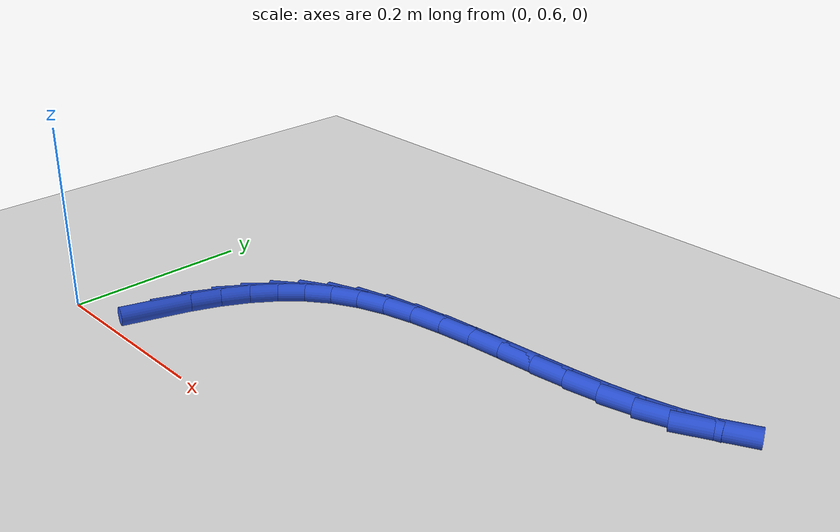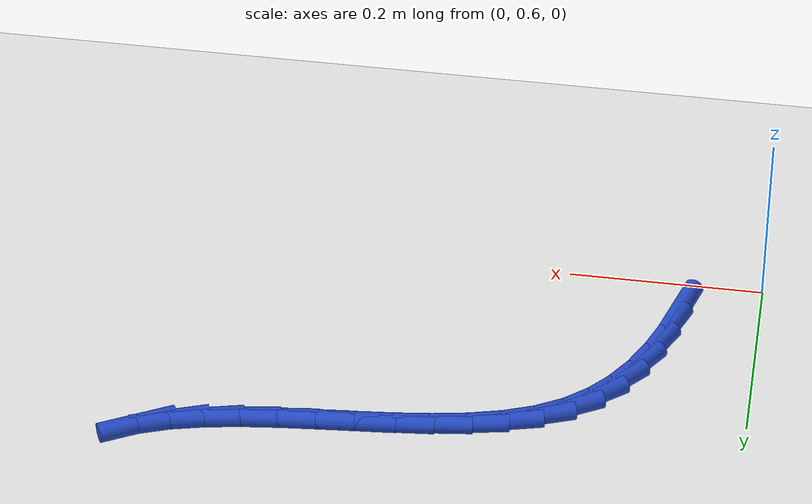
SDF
<sdf version="1.6">
 <world name="default">
  <model name="ground_plane">
   <static>1</static>
   <link name="link">
    <collision name="collision">
     <geometry><plane><normal>0 0 1</normal><size>100 100</size></plane></geometry>
     <surface><friction><ode><mu>100</mu><mu2>50</mu2></ode></friction></surface>
    </collision>
    <visual name="visual">
     <cast_shadows>0</cast_shadows>
     <geometry><plane><normal>0 0 1</normal><size>100 100</size></plane></geometry>
     <material>
      <script><uri>file://media/materials/scripts/gazebo.material</uri><name>Gazebo/WhiteGlow</name></script>
     </material>
    </visual>
   </link>
  </model>
  <model name="line">
   <link name="link_18">
    <pose>0.0817759770415257 0.649436278435134 0.01 0 1.57 1.266815166307807</pose>
    <collision name="collision">
     <geometry><cylinder><radius>0.01</radius><length>0.08</length></cylinder></geometry>
    </collision>
    <visual name="visual">
     <material>
      <script><name>Gazebo/Blue</name><uri>file://media/materials/scripts/gazebo.material</uri></script>
     </material>
     <geometry><cylinder><radius>0.01</radius><length>0.08</length></cylinder></geometry>
    </visual>
   </link>
   <link name="link_19">
    <pose>0.09200708818503411 0.6820502037126998 0.01 0 1.57 1.1833006721139656</pose>
    <collision name="collision">
     <geometry><cylinder><radius>0.01</radius><length>0.08</length></cylinder></geometry>
    </collision>
    <visual name="visual">
     <material>
      <script><name>Gazebo/Blue</name><uri>file://media/materials/scripts/gazebo.material</uri></script>
     </material>
     <geometry><cylinder><radius>0.01</radius><length>0.08</length></cylinder></geometry>
    </visual>
   </link>
   <link name="link_20">
    <pose>0.104422188538603 0.7124696471125621 0.01 0 1.57 1.080940467783973</pose>
    <collision name="collision">
     <geometry><cylinder><radius>0.01</radius><length>0.08</length></cylinder></geometry>
    </collision>
    <visual name="visual">
     <material>
      <script><name>Gazebo/Blue</name><uri>file://media/materials/scripts/gazebo.material</uri></script>
     </material>
     <geometry><cylinder><radius>0.01</radius><length>0.08</length></cylinder></geometry>
    </visual>
   </link>
   <link name="link_21">
    <pose>0.11930433424004905 0.7403804904211786 0.01 0 1.57 0.9581852893349911</pose>
    <collision name="collision">
     <geometry><cylinder><radius>0.01</radius><length>0.08</length></cylinder></geometry>
    </collision>
    <visual name="visual">
     <material>
      <script><name>Gazebo/Blue</name><uri>file://media/materials/scripts/gazebo.material</uri></script>
     </material>
     <geometry><cylinder><radius>0.01</radius><length>0.08</length></cylinder></geometry>
    </visual>
   </link>
   <link name="link_22">
    <pose>0.13693658142718912 0.7654686154250061 0.01 0 1.57 0.815562250640637</pose>
    <collision name="collision">
     <geometry><cylinder><radius>0.01</radius><length>0.08</length></cylinder></geometry>
    </collision>
    <visual name="visual">
     <material>
      <script><name>Gazebo/Blue</name><uri>file://media/materials/scripts/gazebo.material</uri></script>
     </material>
     <geometry><cylinder><radius>0.01</radius><length>0.08</length></cylinder></geometry>
    </visual>
   </link>
   <link name="link_23">
    <pose>0.15760198623783994 0.7874199039105019 0.01 0 1.57 0.6570808959312375</pose>
    <collision name="collision">
     <geometry><cylinder><radius>0.01</radius><length>0.08</length></cylinder></geometry>
    </collision>
    <visual name="visual">
     <material>
      <script><name>Gazebo/Blue</name><uri>file://media/materials/scripts/gazebo.material</uri></script>
     </material>
     <geometry><cylinder><radius>0.01</radius><length>0.08</length></cylinder></geometry>
    </visual>
   </link>
   <link name="link_24">
    <pose>0.18158360480981847 0.8059202376641235 0.01 0 1.57 0.4918538268782702</pose>
    <collision name="collision">
     <geometry><cylinder><radius>0.01</radius><length>0.08</length></cylinder></geometry>
    </collision>
    <visual name="visual">
     <material>
      <script><name>Gazebo/Blue</name><uri>file://media/materials/scripts/gazebo.material</uri></script>
     </material>
     <geometry><cylinder><radius>0.01</radius><length>0.08</length></cylinder></geometry>
    </visual>
   </link>
   <link name="link_25">
    <pose>0.20913826373428557 0.8206832455608908 0.01 0 1.57 0.3483219362038101</pose>
    <collision name="collision">
     <geometry><cylinder><radius>0.01</radius><length>0.08</length></cylinder></geometry>
    </collision>
    <visual name="visual">
     <material>
      <script><name>Gazebo/Blue</name><uri>file://media/materials/scripts/gazebo.material</uri></script>
     </material>
     <geometry><cylinder><radius>0.01</radius><length>0.08</length></cylinder></geometry>
    </visual>
   </link>
   <link name="link_26">
    <pose>0.240060230521404 0.8319118774676965 0.01 0 1.57 0.2420111601027854</pose>
    <collision name="collision">
     <geometry><cylinder><radius>0.01</radius><length>0.08</length></cylinder></geometry>
    </collision>
    <visual name="visual">
     <material>
      <script><name>Gazebo/Blue</name><uri>file://media/materials/scripts/gazebo.material</uri></script>
     </material>
     <geometry><cylinder><radius>0.01</radius><length>0.08</length></cylinder></geometry>
    </visual>
   </link>
   <link name="link_27">
    <pose>0.27374805530892843 0.8402276953274301 0.01 0 1.57 0.16690782609652852</pose>
    <collision name="collision">
     <geometry><cylinder><radius>0.01</radius><length>0.08</length></cylinder></geometry>
    </collision>
    <visual name="visual">
     <material>
      <script><name>Gazebo/Blue</name><uri>file://media/materials/scripts/gazebo.material</uri></script>
     </material>
     <geometry><cylinder><radius>0.01</radius><length>0.08</length></cylinder></geometry>
    </visual>
   </link>
   <link name="link_28">
    <pose>0.30958752919378213 0.8462657583134355 0.01 0 1.57 0.11705816339653283</pose>
    <collision name="collision">
     <geometry><cylinder><radius>0.01</radius><length>0.08</length></cylinder></geometry>
    </collision>
    <visual name="visual">
     <material>
      <script><name>Gazebo/Blue</name><uri>file://media/materials/scripts/gazebo.material</uri></script>
     </material>
     <geometry><cylinder><radius>0.01</radius><length>0.08</length></cylinder></geometry>
    </visual>
   </link>
   <link name="link_29">
    <pose>0.346964443272888 0.8506611255990569 0.01 0 1.57 0.08822256442507632</pose>
    <collision name="collision">
     <geometry><cylinder><radius>0.01</radius><length>0.08</length></cylinder></geometry>
    </collision>
    <visual name="visual">
     <material>
      <script><name>Gazebo/Blue</name><uri>file://media/materials/scripts/gazebo.material</uri></script>
     </material>
     <geometry><cylinder><radius>0.01</radius><length>0.08</length></cylinder></geometry>
    </visual>
   </link>
   <link name="link_30">
    <pose>0.38526458864316976 0.8540488563576387 0.01 0 1.57 0.07793605500294389</pose>
    <collision name="collision">
     <geometry><cylinder><radius>0.01</radius><length>0.08</length></cylinder></geometry>
    </collision>
    <visual name="visual">
     <material>
      <script><name>Gazebo/Blue</name><uri>file://media/materials/scripts/gazebo.material</uri></script>
     </material>
     <geometry><cylinder><radius>0.01</radius><length>0.08</length></cylinder></geometry>
    </visual>
   </link>
   <link name="link_31">
    <pose>0.42387375640155023 0.8570640097625246 0.01 0 1.57 0.0853611138401619</pose>
    <collision name="collision">
     <geometry><cylinder><radius>0.01</radius><length>0.08</length></cylinder></geometry>
    </collision>
    <visual name="visual">
     <material>
      <script><name>Gazebo/Blue</name><uri>file://media/materials/scripts/gazebo.material</uri></script>
     </material>
     <geometry><cylinder><radius>0.01</radius><length>0.08</length></cylinder></geometry>
    </visual>
   </link>
   <link name="link_32">
    <pose>0.4621777376449526 0.8603416449870586 0.01 0 1.57 0.11122087228293132</pose>
    <collision name="collision">
     <geometry><cylinder><radius>0.01</radius><length>0.08</length></cylinder></geometry>
    </collision>
    <visual name="visual">
     <material>
      <script><name>Gazebo/Blue</name><uri>file://media/materials/scripts/gazebo.material</uri></script>
     </material>
     <geometry><cylinder><radius>0.01</radius><length>0.08</length></cylinder></geometry>
    </visual>
   </link>
   <link name="link_33">
    <pose>0.49956232347030005 0.864516821204585 0.01 0 1.57 0.15788329839241244</pose>
    <collision name="collision">
     <geometry><cylinder><radius>0.01</radius><length>0.08</length></cylinder></geometry>
    </collision>
    <visual name="visual">
     <material>
      <script><name>Gazebo/Blue</name><uri>file://media/materials/scripts/gazebo.material</uri></script>
     </material>
     <geometry><cylinder><radius>0.01</radius><length>0.08</length></cylinder></geometry>
    </visual>
   </link>
   <link name="link_34">
    <pose>0.5354133049745157 0.8702245975884476 0.01 0 1.57 0.22955165410758305</pose>
    <collision name="collision">
     <geometry><cylinder><radius>0.01</radius><length>0.08</length></cylinder></geometry>
    </collision>
    <visual name="visual">
     <material>
      <script><name>Gazebo/Blue</name><uri>file://media/materials/scripts/gazebo.material</uri></script>
     </material>
     <geometry><cylinder><radius>0.01</radius><length>0.08</length></cylinder></geometry>
    </visual>
   </link>
   <link name="link_35">
    <pose>0.569116473254523 0.8781000333119909 0.01 0 1.57 0.33231344397236207</pose>
    <collision name="collision">
     <geometry><cylinder><radius>0.01</radius><length>0.08</length></cylinder></geometry>
    </collision>
    <visual name="visual">
     <material>
      <script><name>Gazebo/Blue</name><uri>file://media/materials/scripts/gazebo.material</uri></script>
     </material>
     <geometry><cylinder><radius>0.01</radius><length>0.08</length></cylinder></geometry>
    </visual>
   </link>
   <link name="link_36">
    <pose>0.6000576194072447 0.8887781875485583 0.01 0 1.57 0.4732789290980361</pose>
    <collision name="collision">
     <geometry><cylinder><radius>0.01</radius><length>0.08</length></cylinder></geometry>
    </collision>
    <visual name="visual">
     <material>
      <script><name>Gazebo/Blue</name><uri>file://media/materials/scripts/gazebo.material</uri></script>
     </material>
     <geometry><cylinder><radius>0.01</radius><length>0.08</length></cylinder></geometry>
    </visual>
   </link>
  </model>
 </world>
</sdf>
